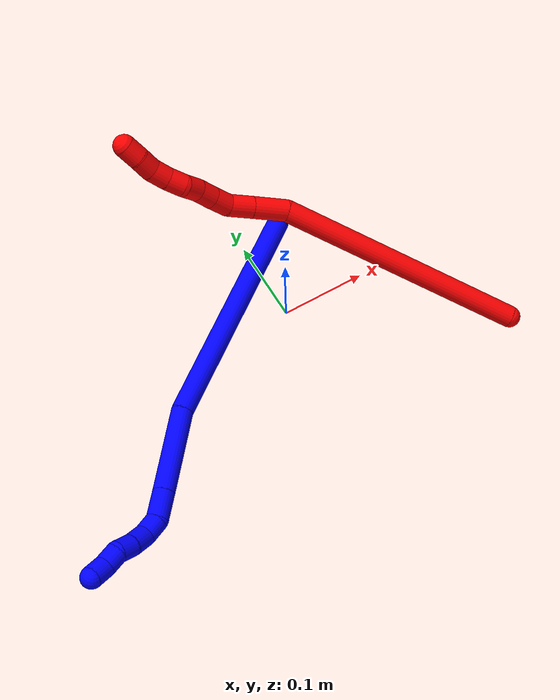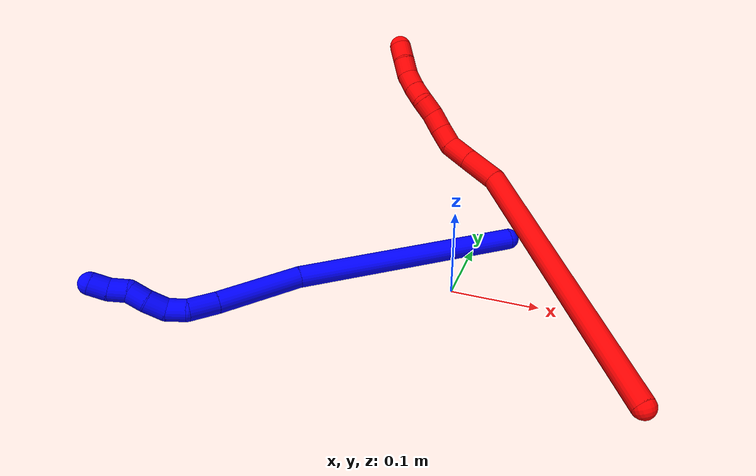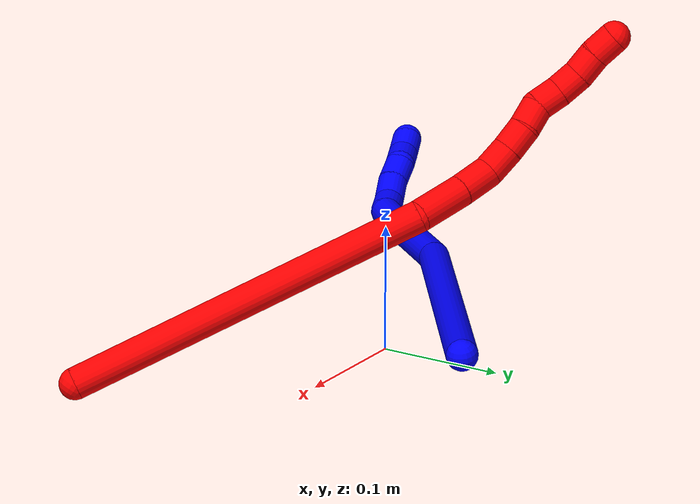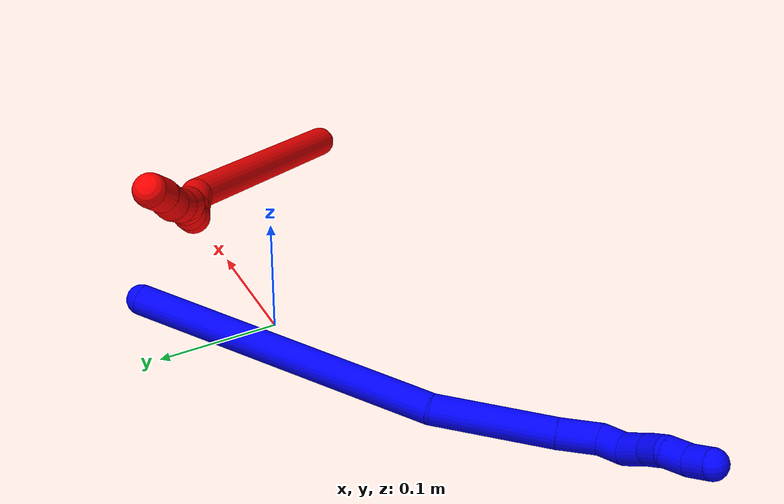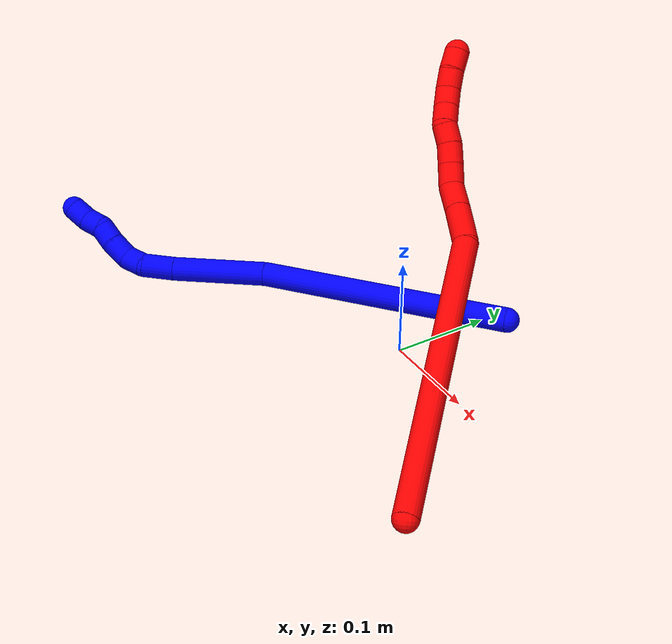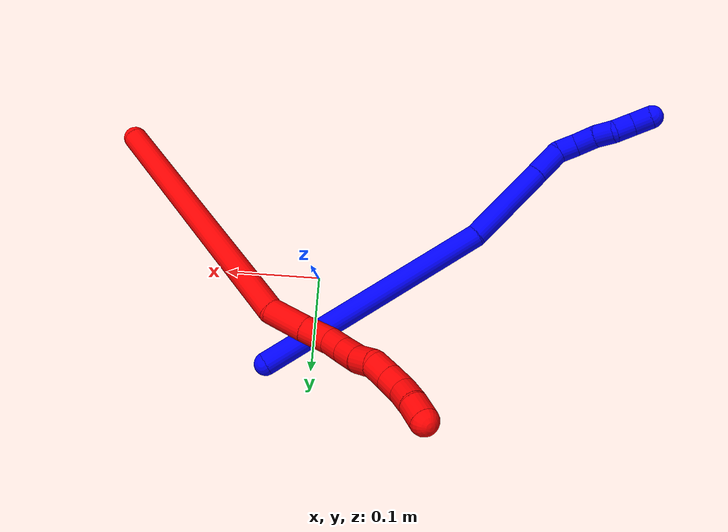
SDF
<sdf version="1.7">
 <world name="default">
  <plugin name="TubeGeneratorPlugin" filename="libtube_generator_plugin.so"/>
  <model name="photoneo_s_sensor">
   <static>1</static>
   <pose>0 0 2 1.57079 1.57079 3.14159</pose>
   <link name="link">
    <inertial><mass>0.1</mass></inertial>
    <sensor name="sensor" type="depth">
     <update_rate>30</update_rate>
     <camera>
      <horizontal_fov>1.22</horizontal_fov>
      <image><width>1920</width><height>1200</height><format>B8G8R8</format></image>
      <clip><near>0.1</near><far>4</far></clip>
      <depth_camera><output>points</output></depth_camera>
     </camera>
     <plugin name="camera_plugin" filename="libgazebo_ros_depth_camera.so">
      <baseline>0.2</baseline>
      <alwaysOn>1</alwaysOn>
      <updateRate>0.0</updateRate>
      <cameraName>camera_ir</cameraName>
      <imageTopicName>/camera/color/image_raw</imageTopicName>
      <cameraInfoTopicName>/camera/color/camera_info</cameraInfoTopicName>
      <depthImageTopicName>/camera/depth/image_raw</depthImageTopicName>
      <depthImageCameraInfoTopicName>/camera/depth/camera_info</depthImageCameraInfoTopicName>
      <pointCloudTopicName>/camera/depth/points</pointCloudTopicName>
      <frameName>fr_optical</frameName>
      <pointCloudCutoff>0.1</pointCloudCutoff>
      <pointCloudCutoffMax>2.0</pointCloudCutoffMax>
      <distortionK1>0</distortionK1>
      <distortionK2>0</distortionK2>
      <distortionK3>0</distortionK3>
      <distortionT1>0</distortionT1>
      <distortionT2>0</distortionT2>
      <CxPrime>0</CxPrime>
      <Cx>0</Cx>
      <Cy>0</Cy>
      <focalLength>0</focalLength>
      <hackBaseline>0</hackBaseline>
     </plugin>
    </sensor>
   </link>
  </model>
  <gravity>0 0 -9.8</gravity>
  <magnetic_field>6e-06 2.3e-05 -4.2e-05</magnetic_field>
  <atmosphere type="adiabatic"/>
  <physics name="default_physics" default="0" type="ode">
   <max_step_size>0.003</max_step_size>
   <real_time_factor>1</real_time_factor>
   <real_time_update_rate>1000</real_time_update_rate>
   <max_contacts>10000</max_contacts>
   <ode>
    <solver>
     <type>quick</type>
     <iters>100</iters>
     <sor>1.3</sor>
     <use_dynamic_moi_rescaling>0</use_dynamic_moi_rescaling>
    </solver>
    <constraints>
     <contact_max_correcting_vel>0</contact_max_correcting_vel>
     <contact_surface_layer>0.001</contact_surface_layer>
     <cfm>0</cfm>
     <erp>0.2</erp>
    </constraints>
   </ode>
  </physics>
  <scene><ambient>0.4 0.4 0.4 1</ambient><background>0.7 0.7 0.7 1</background><shadows>0</shadows></scene>
  <audio><device>default</device></audio>
  <spherical_coordinates>
   <surface_model>EARTH_WGS84</surface_model>
   <latitude_deg>0</latitude_deg>
   <longitude_deg>0</longitude_deg>
   <elevation>0</elevation>
   <heading_deg>0</heading_deg>
  </spherical_coordinates>
  <model name="bin">
   <static>1</static>
   <link name="bottom">
    <collision name="collision-bottom">
     <pose>0 0 -0.01 0 -0 0</pose>
     <geometry><box><size>0.8 0.6 0.02</size></box></geometry>
     <surface>
      <friction><ode><mu>100</mu><mu2>100</mu2></ode></friction>
      <contact><collide_bitmask>65535</collide_bitmask></contact>
     </surface>
    </collision>
   </link>
   <link name="west_wall">
    <collision name="collision-west_wall">
     <pose>-0.41 0 0.1 0 -0 0</pose>
     <geometry><box><size>0.02 0.6 0.2</size></box></geometry>
     <surface>
      <friction><ode><mu>100</mu><mu2>100</mu2></ode></friction>
      <contact><collide_bitmask>65535</collide_bitmask></contact>
     </surface>
    </collision>
   </link>
   <link name="east_wall">
    <collision name="collision-east_wall">
     <pose>0.41 0 0.1 0 -0 0</pose>
     <geometry><box><size>0.02 0.6 0.2</size></box></geometry>
     <surface>
      <friction><ode><mu>100</mu><mu2>100</mu2></ode></friction>
      <contact><collide_bitmask>65535</collide_bitmask></contact>
     </surface>
    </collision>
   </link>
   <link name="south_wall">
    <collision name="collision-south_wall">
     <pose>0 -0.31 0.1 0 -0 0</pose>
     <geometry><box><size>0.8 0.02 0.2</size></box></geometry>
     <surface>
      <friction><ode><mu>100</mu><mu2>100</mu2></ode></friction>
      <contact><collide_bitmask>65535</collide_bitmask></contact>
     </surface>
    </collision>
   </link>
   <link name="north_wall">
    <collision name="collision-north_wall">
     <pose>0 0.31 0.1 0 -0 0</pose>
     <geometry><box><size>0.8 0.02 0.2</size></box></geometry>
     <surface>
      <friction><ode><mu>100</mu><mu2>100</mu2></ode></friction>
      <contact><collide_bitmask>65535</collide_bitmask></contact>
     </surface>
    </collision>
   </link>
  </model>
  <model name="1">
   <static>0</static>
   <link name="1">
    <collision name="collision-cylinder-e_1_1_4">
     <pose>-0.097553 -0.079402 -0.036047 1.99695 -0.84137 -1.21398</pose>
     <geometry><cylinder><radius>0.0125</radius><length>0.261692</length></cylinder></geometry>
     <surface>
      <friction><ode><mu>1.16</mu><mu2>1.16</mu2><slip1>0</slip1><slip2>0</slip2></ode></friction>
      <contact><ode><kp>1e+06</kp><kd>1</kd><max_vel>0</max_vel><min_depth>0.001</min_depth></ode></contact>
     </surface>
    </collision>
    <visual name="visual-cylinder-e_1_1_4">
     <pose>-0.097553 -0.079402 -0.036047 1.99695 -0.84137 -1.21398</pose>
     <geometry><cylinder><radius>0.0125</radius><length>0.261692</length></cylinder></geometry>
     <material><ambient>0 0 1 1</ambient></material>
    </visual>
    <collision name="collision-cylinder-e_2_4_5">
     <pose>-0.22378 -0.196857 -0.083614 1.86477 -0.624822 -0.82104</pose>
     <geometry><cylinder><radius>0.0125</radius><length>0.098039</length></cylinder></geometry>
     <surface>
      <friction><ode><mu>1.16</mu><mu2>1.16</mu2><slip1>0</slip1><slip2>0</slip2></ode></friction>
      <contact><ode><kp>1e+06</kp><kd>1</kd><max_vel>0</max_vel><min_depth>0.001</min_depth></ode></contact>
     </surface>
    </collision>
    <visual name="visual-cylinder-e_2_4_5">
     <pose>-0.22378 -0.196857 -0.083614 1.86477 -0.624822 -0.82104</pose>
     <geometry><cylinder><radius>0.0125</radius><length>0.098039</length></cylinder></geometry>
     <material><ambient>0 0 1 1</ambient></material>
    </visual>
    <collision name="collision-cylinder-e_3_5_6">
     <pose>-0.262452 -0.247988 -0.097878 1.77759 -0.64226 -0.77763</pose>
     <geometry><cylinder><radius>0.0125</radius><length>0.03338</length></cylinder></geometry>
     <surface>
      <friction><ode><mu>1.16</mu><mu2>1.16</mu2><slip1>0</slip1><slip2>0</slip2></ode></friction>
      <contact><ode><kp>1e+06</kp><kd>1</kd><max_vel>0</max_vel><min_depth>0.001</min_depth></ode></contact>
     </surface>
    </collision>
    <visual name="visual-cylinder-e_3_5_6">
     <pose>-0.262452 -0.247988 -0.097878 1.77759 -0.64226 -0.77763</pose>
     <geometry><cylinder><radius>0.0125</radius><length>0.03338</length></cylinder></geometry>
     <material><ambient>0 0 1 1</ambient></material>
    </visual>
    <collision name="collision-cylinder-e_4_6_7">
     <pose>-0.28195 -0.26598 -0.102349 1.90897 -1.06949 -1.39282</pose>
     <geometry><cylinder><radius>0.0125</radius><length>0.021669</length></cylinder></geometry>
     <surface>
      <friction><ode><mu>1.16</mu><mu2>1.16</mu2><slip1>0</slip1><slip2>0</slip2></ode></friction>
      <contact><ode><kp>1e+06</kp><kd>1</kd><max_vel>0</max_vel><min_depth>0.001</min_depth></ode></contact>
     </surface>
    </collision>
    <visual name="visual-cylinder-e_4_6_7">
     <pose>-0.28195 -0.26598 -0.102349 1.90897 -1.06949 -1.39282</pose>
     <geometry><cylinder><radius>0.0125</radius><length>0.021669</length></cylinder></geometry>
     <material><ambient>0 0 1 1</ambient></material>
    </visual>
    <collision name="collision-cylinder-e_5_7_8">
     <pose>-0.301836 -0.275334 -0.100977 0.961561 -1.08998 -0.612529</pose>
     <geometry><cylinder><radius>0.0125</radius><length>0.023426</length></cylinder></geometry>
     <surface>
      <friction><ode><mu>1.16</mu><mu2>1.16</mu2><slip1>0</slip1><slip2>0</slip2></ode></friction>
      <contact><ode><kp>1e+06</kp><kd>1</kd><max_vel>0</max_vel><min_depth>0.001</min_depth></ode></contact>
     </surface>
    </collision>
    <visual name="visual-cylinder-e_5_7_8">
     <pose>-0.301836 -0.275334 -0.100977 0.961561 -1.08998 -0.612529</pose>
     <geometry><cylinder><radius>0.0125</radius><length>0.023426</length></cylinder></geometry>
     <material><ambient>0 0 1 1</ambient></material>
    </visual>
    <collision name="collision-cylinder-e_6_8_9">
     <pose>-0.321842 -0.282075 -0.095042 0.68119 -1.20824 -0.479802</pose>
     <geometry><cylinder><radius>0.0125</radius><length>0.02058</length></cylinder></geometry>
     <surface>
      <friction><ode><mu>1.16</mu><mu2>1.16</mu2><slip1>0</slip1><slip2>0</slip2></ode></friction>
      <contact><ode><kp>1e+06</kp><kd>1</kd><max_vel>0</max_vel><min_depth>0.001</min_depth></ode></contact>
     </surface>
    </collision>
    <visual name="visual-cylinder-e_6_8_9">
     <pose>-0.321842 -0.282075 -0.095042 0.68119 -1.20824 -0.479802</pose>
     <geometry><cylinder><radius>0.0125</radius><length>0.02058</length></cylinder></geometry>
     <material><ambient>0 0 1 1</ambient></material>
    </visual>
    <collision name="collision-cylinder-e_7_9_10">
     <pose>-0.340554 -0.288907 -0.093391 1.82633 -1.09479 -1.33626</pose>
     <geometry><cylinder><radius>0.0125</radius><length>0.020454</length></cylinder></geometry>
     <surface>
      <friction><ode><mu>1.16</mu><mu2>1.16</mu2><slip1>0</slip1><slip2>0</slip2></ode></friction>
      <contact><ode><kp>1e+06</kp><kd>1</kd><max_vel>0</max_vel><min_depth>0.001</min_depth></ode></contact>
     </surface>
    </collision>
    <visual name="visual-cylinder-e_7_9_10">
     <pose>-0.340554 -0.288907 -0.093391 1.82633 -1.09479 -1.33626</pose>
     <geometry><cylinder><radius>0.0125</radius><length>0.020454</length></cylinder></geometry>
     <material><ambient>0 0 1 1</ambient></material>
    </visual>
    <collision name="collision-cylinder-e_8_10_2">
     <pose>-0.359127 -0.297442 -0.093229 1.24601 -1.15197 -0.873145</pose>
     <geometry><cylinder><radius>0.0125</radius><length>0.020761</length></cylinder></geometry>
     <surface>
      <friction><ode><mu>1.16</mu><mu2>1.16</mu2><slip1>0</slip1><slip2>0</slip2></ode></friction>
      <contact><ode><kp>1e+06</kp><kd>1</kd><max_vel>0</max_vel><min_depth>0.001</min_depth></ode></contact>
     </surface>
    </collision>
    <visual name="visual-cylinder-e_8_10_2">
     <pose>-0.359127 -0.297442 -0.093229 1.24601 -1.15197 -0.873145</pose>
     <geometry><cylinder><radius>0.0125</radius><length>0.020761</length></cylinder></geometry>
     <material><ambient>0 0 1 1</ambient></material>
    </visual>
    <collision name="collision-sphere-2">
     <pose>-0.36861 -0.301443 -0.091881 0 -0 0</pose>
     <geometry><sphere><radius>0.0125</radius></sphere></geometry>
     <surface>
      <friction><ode><mu>1.16</mu><mu2>1.16</mu2><slip1>0</slip1><slip2>0</slip2></ode></friction>
      <contact><ode><kp>1e+06</kp><kd>1</kd><max_vel>0</max_vel><min_depth>0.001</min_depth></ode></contact>
     </surface>
    </collision>
    <visual name="visual-sphere-2">
     <pose>-0.36861 -0.301443 -0.091881 0 -0 0</pose>
     <geometry><sphere><radius>0.0125</radius></sphere></geometry>
     <material><ambient>0 0 1 1</ambient></material>
    </visual>
    <collision name="collision-sphere-10">
     <pose>-0.349644 -0.293442 -0.094576 0 -0 0</pose>
     <geometry><sphere><radius>0.0125</radius></sphere></geometry>
     <surface>
      <friction><ode><mu>1.16</mu><mu2>1.16</mu2><slip1>0</slip1><slip2>0</slip2></ode></friction>
      <contact><ode><kp>1e+06</kp><kd>1</kd><max_vel>0</max_vel><min_depth>0.001</min_depth></ode></contact>
     </surface>
    </collision>
    <visual name="visual-sphere-10">
     <pose>-0.349644 -0.293442 -0.094576 0 -0 0</pose>
     <geometry><sphere><radius>0.0125</radius></sphere></geometry>
     <material><ambient>0 0 1 1</ambient></material>
    </visual>
    <collision name="collision-sphere-9">
     <pose>-0.331464 -0.284373 -0.092207 0 -0 0</pose>
     <geometry><sphere><radius>0.0125</radius></sphere></geometry>
     <surface>
      <friction><ode><mu>1.16</mu><mu2>1.16</mu2><slip1>0</slip1><slip2>0</slip2></ode></friction>
      <contact><ode><kp>1e+06</kp><kd>1</kd><max_vel>0</max_vel><min_depth>0.001</min_depth></ode></contact>
     </surface>
    </collision>
    <visual name="visual-sphere-9">
     <pose>-0.331464 -0.284373 -0.092207 0 -0 0</pose>
     <geometry><sphere><radius>0.0125</radius></sphere></geometry>
     <material><ambient>0 0 1 1</ambient></material>
    </visual>
    <collision name="collision-sphere-4">
     <pose>-0.195106 -0.158804 -0.072094 0 -0 0</pose>
     <geometry><sphere><radius>0.0125</radius></sphere></geometry>
     <surface>
      <friction><ode><mu>1.16</mu><mu2>1.16</mu2><slip1>0</slip1><slip2>0</slip2></ode></friction>
      <contact><ode><kp>1e+06</kp><kd>1</kd><max_vel>0</max_vel><min_depth>0.001</min_depth></ode></contact>
     </surface>
    </collision>
    <visual name="visual-sphere-4">
     <pose>-0.195106 -0.158804 -0.072094 0 -0 0</pose>
     <geometry><sphere><radius>0.0125</radius></sphere></geometry>
     <material><ambient>0 0 1 1</ambient></material>
    </visual>
    <collision name="collision-sphere-1">
     <geometry><sphere><radius>0.0125</radius></sphere></geometry>
     <surface>
      <friction><ode><mu>1.16</mu><mu2>1.16</mu2><slip1>0</slip1><slip2>0</slip2></ode></friction>
      <contact><ode><kp>1e+06</kp><kd>1</kd><max_vel>0</max_vel><min_depth>0.001</min_depth></ode></contact>
     </surface>
    </collision>
    <visual name="visual-sphere-1">
     <geometry><sphere><radius>0.0125</radius></sphere></geometry>
     <material><ambient>0 0 1 1</ambient></material>
    </visual>
    <collision name="collision-sphere-8">
     <pose>-0.312221 -0.279777 -0.097877 0 -0 0</pose>
     <geometry><sphere><radius>0.0125</radius></sphere></geometry>
     <surface>
      <friction><ode><mu>1.16</mu><mu2>1.16</mu2><slip1>0</slip1><slip2>0</slip2></ode></friction>
      <contact><ode><kp>1e+06</kp><kd>1</kd><max_vel>0</max_vel><min_depth>0.001</min_depth></ode></contact>
     </surface>
    </collision>
    <visual name="visual-sphere-8">
     <pose>-0.312221 -0.279777 -0.097877 0 -0 0</pose>
     <geometry><sphere><radius>0.0125</radius></sphere></geometry>
     <material><ambient>0 0 1 1</ambient></material>
    </visual>
    <collision name="collision-sphere-5">
     <pose>-0.252454 -0.234909 -0.095134 0 -0 0</pose>
     <geometry><sphere><radius>0.0125</radius></sphere></geometry>
     <surface>
      <friction><ode><mu>1.16</mu><mu2>1.16</mu2><slip1>0</slip1><slip2>0</slip2></ode></friction>
      <contact><ode><kp>1e+06</kp><kd>1</kd><max_vel>0</max_vel><min_depth>0.001</min_depth></ode></contact>
     </surface>
    </collision>
    <visual name="visual-sphere-5">
     <pose>-0.252454 -0.234909 -0.095134 0 -0 0</pose>
     <geometry><sphere><radius>0.0125</radius></sphere></geometry>
     <material><ambient>0 0 1 1</ambient></material>
    </visual>
    <collision name="collision-sphere-6">
     <pose>-0.272449 -0.261068 -0.100622 0 -0 0</pose>
     <geometry><sphere><radius>0.0125</radius></sphere></geometry>
     <surface>
      <friction><ode><mu>1.16</mu><mu2>1.16</mu2><slip1>0</slip1><slip2>0</slip2></ode></friction>
      <contact><ode><kp>1e+06</kp><kd>1</kd><max_vel>0</max_vel><min_depth>0.001</min_depth></ode></contact>
     </surface>
    </collision>
    <visual name="visual-sphere-6">
     <pose>-0.272449 -0.261068 -0.100622 0 -0 0</pose>
     <geometry><sphere><radius>0.0125</radius></sphere></geometry>
     <material><ambient>0 0 1 1</ambient></material>
    </visual>
    <collision name="collision-sphere-7">
     <pose>-0.291451 -0.270892 -0.104077 0 -0 0</pose>
     <geometry><sphere><radius>0.0125</radius></sphere></geometry>
     <surface>
      <friction><ode><mu>1.16</mu><mu2>1.16</mu2><slip1>0</slip1><slip2>0</slip2></ode></friction>
      <contact><ode><kp>1e+06</kp><kd>1</kd><max_vel>0</max_vel><min_depth>0.001</min_depth></ode></contact>
     </surface>
    </collision>
    <visual name="visual-sphere-7">
     <pose>-0.291451 -0.270892 -0.104077 0 -0 0</pose>
     <geometry><sphere><radius>0.0125</radius></sphere></geometry>
     <material><ambient>0 0 1 1</ambient></material>
    </visual>
    <inertial>
     <pose>-0.180908 -0.156918 -0.062565 0 -0 0</pose>
     <mass>0.5</mass>
     <inertia>
      <ixx>-0.000622</ixx>
      <ixy>0</ixy>
      <ixz>0</ixz>
      <iyy>-0.000252</iyy>
      <iyz>0</iyz>
      <izz>0.002155</izz>
     </inertia>
    </inertial>
   </link>
   <pose>0.044792 0.096337 0.028538 -0.056443 0.252109 -0.042448</pose>
  </model>
  <model name="2">
   <static>0</static>
   <link name="2">
    <collision name="collision-cylinder-e_1_1_4">
     <pose>-0.047911 0.0617 0.120817 -0.472161 -0.339493 0.082417</pose>
     <geometry><cylinder><radius>0.0125</radius><length>0.287743</length></cylinder></geometry>
     <surface>
      <friction><ode><mu>1.16</mu><mu2>1.16</mu2><slip1>0</slip1><slip2>0</slip2></ode></friction>
      <contact><ode><kp>1e+06</kp><kd>1</kd><max_vel>0</max_vel><min_depth>0.001</min_depth></ode></contact>
     </surface>
    </collision>
    <visual name="visual-cylinder-e_1_1_4">
     <pose>-0.047911 0.0617 0.120817 -0.472161 -0.339493 0.082417</pose>
     <geometry><cylinder><radius>0.0125</radius><length>0.287743</length></cylinder></geometry>
     <material><ambient>1 0 0 1</ambient></material>
    </visual>
    <collision name="collision-cylinder-e_2_4_5">
     <pose>-0.107883 0.127294 0.257265 -0.24418 -0.642725 0.081649</pose>
     <geometry><cylinder><radius>0.0125</radius><length>0.040249</length></cylinder></geometry>
     <surface>
      <friction><ode><mu>1.16</mu><mu2>1.16</mu2><slip1>0</slip1><slip2>0</slip2></ode></friction>
      <contact><ode><kp>1e+06</kp><kd>1</kd><max_vel>0</max_vel><min_depth>0.001</min_depth></ode></contact>
     </surface>
    </collision>
    <visual name="visual-cylinder-e_2_4_5">
     <pose>-0.107883 0.127294 0.257265 -0.24418 -0.642725 0.081649</pose>
     <geometry><cylinder><radius>0.0125</radius><length>0.040249</length></cylinder></geometry>
     <material><ambient>1 0 0 1</ambient></material>
    </visual>
    <collision name="collision-cylinder-e_3_5_6">
     <pose>-0.128309 0.133115 0.284127 -0.169911 -0.633188 0.055785</pose>
     <geometry><cylinder><radius>0.0125</radius><length>0.02827</length></cylinder></geometry>
     <surface>
      <friction><ode><mu>1.16</mu><mu2>1.16</mu2><slip1>0</slip1><slip2>0</slip2></ode></friction>
      <contact><ode><kp>1e+06</kp><kd>1</kd><max_vel>0</max_vel><min_depth>0.001</min_depth></ode></contact>
     </surface>
    </collision>
    <visual name="visual-cylinder-e_3_5_6">
     <pose>-0.128309 0.133115 0.284127 -0.169911 -0.633188 0.055785</pose>
     <geometry><cylinder><radius>0.0125</radius><length>0.02827</length></cylinder></geometry>
     <material><ambient>1 0 0 1</ambient></material>
    </visual>
    <collision name="collision-cylinder-e_4_6_7">
     <pose>-0.139668 0.135768 0.306198 -0.06685 -0.268927 0.009047</pose>
     <geometry><cylinder><radius>0.0125</radius><length>0.022539</length></cylinder></geometry>
     <surface>
      <friction><ode><mu>1.16</mu><mu2>1.16</mu2><slip1>0</slip1><slip2>0</slip2></ode></friction>
      <contact><ode><kp>1e+06</kp><kd>1</kd><max_vel>0</max_vel><min_depth>0.001</min_depth></ode></contact>
     </surface>
    </collision>
    <visual name="visual-cylinder-e_4_6_7">
     <pose>-0.139668 0.135768 0.306198 -0.06685 -0.268927 0.009047</pose>
     <geometry><cylinder><radius>0.0125</radius><length>0.022539</length></cylinder></geometry>
     <material><ambient>1 0 0 1</ambient></material>
    </visual>
    <collision name="collision-cylinder-e_5_7_8">
     <pose>-0.145003 0.136583 0.327347 -0.008627 -0.22331 0.000967</pose>
     <geometry><cylinder><radius>0.0125</radius><length>0.021143</length></cylinder></geometry>
     <surface>
      <friction><ode><mu>1.16</mu><mu2>1.16</mu2><slip1>0</slip1><slip2>0</slip2></ode></friction>
      <contact><ode><kp>1e+06</kp><kd>1</kd><max_vel>0</max_vel><min_depth>0.001</min_depth></ode></contact>
     </surface>
    </collision>
    <visual name="visual-cylinder-e_5_7_8">
     <pose>-0.145003 0.136583 0.327347 -0.008627 -0.22331 0.000967</pose>
     <geometry><cylinder><radius>0.0125</radius><length>0.021143</length></cylinder></geometry>
     <material><ambient>1 0 0 1</ambient></material>
    </visual>
    <collision name="collision-cylinder-e_6_8_9">
     <pose>-0.150439 0.135066 0.347053 0.169219 -0.313885 -0.02684</pose>
     <geometry><cylinder><radius>0.0125</radius><length>0.020045</length></cylinder></geometry>
     <surface>
      <friction><ode><mu>1.16</mu><mu2>1.16</mu2><slip1>0</slip1><slip2>0</slip2></ode></friction>
      <contact><ode><kp>1e+06</kp><kd>1</kd><max_vel>0</max_vel><min_depth>0.001</min_depth></ode></contact>
     </surface>
    </collision>
    <visual name="visual-cylinder-e_6_8_9">
     <pose>-0.150439 0.135066 0.347053 0.169219 -0.313885 -0.02684</pose>
     <geometry><cylinder><radius>0.0125</radius><length>0.020045</length></cylinder></geometry>
     <material><ambient>1 0 0 1</ambient></material>
    </visual>
    <collision name="collision-cylinder-e_7_9_10">
     <pose>-0.156961 0.13627 0.365418 -0.303583 -0.349771 0.054043</pose>
     <geometry><cylinder><radius>0.0125</radius><length>0.020008</length></cylinder></geometry>
     <surface>
      <friction><ode><mu>1.16</mu><mu2>1.16</mu2><slip1>0</slip1><slip2>0</slip2></ode></friction>
      <contact><ode><kp>1e+06</kp><kd>1</kd><max_vel>0</max_vel><min_depth>0.001</min_depth></ode></contact>
     </surface>
    </collision>
    <visual name="visual-cylinder-e_7_9_10">
     <pose>-0.156961 0.13627 0.365418 -0.303583 -0.349771 0.054043</pose>
     <geometry><cylinder><radius>0.0125</radius><length>0.020008</length></cylinder></geometry>
     <material><ambient>1 0 0 1</ambient></material>
    </visual>
    <collision name="collision-cylinder-e_8_10_11">
     <pose>-0.162761 0.141303 0.383844 -0.230859 -0.239388 0.027887</pose>
     <geometry><cylinder><radius>0.0125</radius><length>0.020001</length></cylinder></geometry>
     <surface>
      <friction><ode><mu>1.16</mu><mu2>1.16</mu2><slip1>0</slip1><slip2>0</slip2></ode></friction>
      <contact><ode><kp>1e+06</kp><kd>1</kd><max_vel>0</max_vel><min_depth>0.001</min_depth></ode></contact>
     </surface>
    </collision>
    <visual name="visual-cylinder-e_8_10_11">
     <pose>-0.162761 0.141303 0.383844 -0.230859 -0.239388 0.027887</pose>
     <geometry><cylinder><radius>0.0125</radius><length>0.020001</length></cylinder></geometry>
     <material><ambient>1 0 0 1</ambient></material>
    </visual>
    <collision name="collision-cylinder-e_9_11_12">
     <pose>-0.165211 0.144721 0.40323 -0.119784 -0.007902 0.000474</pose>
     <geometry><cylinder><radius>0.0125</radius><length>0.020001</length></cylinder></geometry>
     <surface>
      <friction><ode><mu>1.16</mu><mu2>1.16</mu2><slip1>0</slip1><slip2>0</slip2></ode></friction>
      <contact><ode><kp>1e+06</kp><kd>1</kd><max_vel>0</max_vel><min_depth>0.001</min_depth></ode></contact>
     </surface>
    </collision>
    <visual name="visual-cylinder-e_9_11_12">
     <pose>-0.165211 0.144721 0.40323 -0.119784 -0.007902 0.000474</pose>
     <geometry><cylinder><radius>0.0125</radius><length>0.020001</length></cylinder></geometry>
     <material><ambient>1 0 0 1</ambient></material>
    </visual>
    <collision name="collision-cylinder-e_10_12_2">
     <pose>-0.165763 0.148662 0.422763 -0.278496 -0.0473 0.006631</pose>
     <geometry><cylinder><radius>0.0125</radius><length>0.02</length></cylinder></geometry>
     <surface>
      <friction><ode><mu>1.16</mu><mu2>1.16</mu2><slip1>0</slip1><slip2>0</slip2></ode></friction>
      <contact><ode><kp>1e+06</kp><kd>1</kd><max_vel>0</max_vel><min_depth>0.001</min_depth></ode></contact>
     </surface>
    </collision>
    <visual name="visual-cylinder-e_10_12_2">
     <pose>-0.165763 0.148662 0.422763 -0.278496 -0.0473 0.006631</pose>
     <geometry><cylinder><radius>0.0125</radius><length>0.02</length></cylinder></geometry>
     <material><ambient>1 0 0 1</ambient></material>
    </visual>
    <collision name="collision-sphere-2">
     <pose>-0.166236 0.151408 0.432367 0 -0 0</pose>
     <geometry><sphere><radius>0.0125</radius></sphere></geometry>
     <surface>
      <friction><ode><mu>1.16</mu><mu2>1.16</mu2><slip1>0</slip1><slip2>0</slip2></ode></friction>
      <contact><ode><kp>1e+06</kp><kd>1</kd><max_vel>0</max_vel><min_depth>0.001</min_depth></ode></contact>
     </surface>
    </collision>
    <visual name="visual-sphere-2">
     <pose>-0.166236 0.151408 0.432367 0 -0 0</pose>
     <geometry><sphere><radius>0.0125</radius></sphere></geometry>
     <material><ambient>1 0 0 1</ambient></material>
    </visual>
    <collision name="collision-sphere-12">
     <pose>-0.16529 0.145916 0.413159 0 -0 0</pose>
     <geometry><sphere><radius>0.0125</radius></sphere></geometry>
     <surface>
      <friction><ode><mu>1.16</mu><mu2>1.16</mu2><slip1>0</slip1><slip2>0</slip2></ode></friction>
      <contact><ode><kp>1e+06</kp><kd>1</kd><max_vel>0</max_vel><min_depth>0.001</min_depth></ode></contact>
     </surface>
    </collision>
    <visual name="visual-sphere-12">
     <pose>-0.16529 0.145916 0.413159 0 -0 0</pose>
     <geometry><sphere><radius>0.0125</radius></sphere></geometry>
     <material><ambient>1 0 0 1</ambient></material>
    </visual>
    <collision name="collision-sphere-11">
     <pose>-0.165132 0.143526 0.393302 0 -0 0</pose>
     <geometry><sphere><radius>0.0125</radius></sphere></geometry>
     <surface>
      <friction><ode><mu>1.16</mu><mu2>1.16</mu2><slip1>0</slip1><slip2>0</slip2></ode></friction>
      <contact><ode><kp>1e+06</kp><kd>1</kd><max_vel>0</max_vel><min_depth>0.001</min_depth></ode></contact>
     </surface>
    </collision>
    <visual name="visual-sphere-11">
     <pose>-0.165132 0.143526 0.393302 0 -0 0</pose>
     <geometry><sphere><radius>0.0125</radius></sphere></geometry>
     <material><ambient>1 0 0 1</ambient></material>
    </visual>
    <collision name="collision-sphere-10">
     <pose>-0.16039 0.13908 0.374386 0 -0 0</pose>
     <geometry><sphere><radius>0.0125</radius></sphere></geometry>
     <surface>
      <friction><ode><mu>1.16</mu><mu2>1.16</mu2><slip1>0</slip1><slip2>0</slip2></ode></friction>
      <contact><ode><kp>1e+06</kp><kd>1</kd><max_vel>0</max_vel><min_depth>0.001</min_depth></ode></contact>
     </surface>
    </collision>
    <visual name="visual-sphere-10">
     <pose>-0.16039 0.13908 0.374386 0 -0 0</pose>
     <geometry><sphere><radius>0.0125</radius></sphere></geometry>
     <material><ambient>1 0 0 1</ambient></material>
    </visual>
    <collision name="collision-sphere-9">
     <pose>-0.153533 0.133461 0.356449 0 -0 0</pose>
     <geometry><sphere><radius>0.0125</radius></sphere></geometry>
     <surface>
      <friction><ode><mu>1.16</mu><mu2>1.16</mu2><slip1>0</slip1><slip2>0</slip2></ode></friction>
      <contact><ode><kp>1e+06</kp><kd>1</kd><max_vel>0</max_vel><min_depth>0.001</min_depth></ode></contact>
     </surface>
    </collision>
    <visual name="visual-sphere-9">
     <pose>-0.153533 0.133461 0.356449 0 -0 0</pose>
     <geometry><sphere><radius>0.0125</radius></sphere></geometry>
     <material><ambient>1 0 0 1</ambient></material>
    </visual>
    <collision name="collision-sphere-4">
     <pose>-0.095821 0.1234 0.241634 0 -0 0</pose>
     <geometry><sphere><radius>0.0125</radius></sphere></geometry>
     <surface>
      <friction><ode><mu>1.16</mu><mu2>1.16</mu2><slip1>0</slip1><slip2>0</slip2></ode></friction>
      <contact><ode><kp>1e+06</kp><kd>1</kd><max_vel>0</max_vel><min_depth>0.001</min_depth></ode></contact>
     </surface>
    </collision>
    <visual name="visual-sphere-4">
     <pose>-0.095821 0.1234 0.241634 0 -0 0</pose>
     <geometry><sphere><radius>0.0125</radius></sphere></geometry>
     <material><ambient>1 0 0 1</ambient></material>
    </visual>
    <collision name="collision-sphere-1">
     <geometry><sphere><radius>0.0125</radius></sphere></geometry>
     <surface>
      <friction><ode><mu>1.16</mu><mu2>1.16</mu2><slip1>0</slip1><slip2>0</slip2></ode></friction>
      <contact><ode><kp>1e+06</kp><kd>1</kd><max_vel>0</max_vel><min_depth>0.001</min_depth></ode></contact>
     </surface>
    </collision>
    <visual name="visual-sphere-1">
     <geometry><sphere><radius>0.0125</radius></sphere></geometry>
     <material><ambient>1 0 0 1</ambient></material>
    </visual>
    <collision name="collision-sphere-8">
     <pose>-0.147344 0.136672 0.337656 0 -0 0</pose>
     <geometry><sphere><radius>0.0125</radius></sphere></geometry>
     <surface>
      <friction><ode><mu>1.16</mu><mu2>1.16</mu2><slip1>0</slip1><slip2>0</slip2></ode></friction>
      <contact><ode><kp>1e+06</kp><kd>1</kd><max_vel>0</max_vel><min_depth>0.001</min_depth></ode></contact>
     </surface>
    </collision>
    <visual name="visual-sphere-8">
     <pose>-0.147344 0.136672 0.337656 0 -0 0</pose>
     <geometry><sphere><radius>0.0125</radius></sphere></geometry>
     <material><ambient>1 0 0 1</ambient></material>
    </visual>
    <collision name="collision-sphere-5">
     <pose>-0.119945 0.131189 0.272896 0 -0 0</pose>
     <geometry><sphere><radius>0.0125</radius></sphere></geometry>
     <surface>
      <friction><ode><mu>1.16</mu><mu2>1.16</mu2><slip1>0</slip1><slip2>0</slip2></ode></friction>
      <contact><ode><kp>1e+06</kp><kd>1</kd><max_vel>0</max_vel><min_depth>0.001</min_depth></ode></contact>
     </surface>
    </collision>
    <visual name="visual-sphere-5">
     <pose>-0.119945 0.131189 0.272896 0 -0 0</pose>
     <geometry><sphere><radius>0.0125</radius></sphere></geometry>
     <material><ambient>1 0 0 1</ambient></material>
    </visual>
    <collision name="collision-sphere-6">
     <pose>-0.136673 0.135042 0.295358 0 -0 0</pose>
     <geometry><sphere><radius>0.0125</radius></sphere></geometry>
     <surface>
      <friction><ode><mu>1.16</mu><mu2>1.16</mu2><slip1>0</slip1><slip2>0</slip2></ode></friction>
      <contact><ode><kp>1e+06</kp><kd>1</kd><max_vel>0</max_vel><min_depth>0.001</min_depth></ode></contact>
     </surface>
    </collision>
    <visual name="visual-sphere-6">
     <pose>-0.136673 0.135042 0.295358 0 -0 0</pose>
     <geometry><sphere><radius>0.0125</radius></sphere></geometry>
     <material><ambient>1 0 0 1</ambient></material>
    </visual>
    <collision name="collision-sphere-7">
     <pose>-0.142662 0.136494 0.317038 0 -0 0</pose>
     <geometry><sphere><radius>0.0125</radius></sphere></geometry>
     <surface>
      <friction><ode><mu>1.16</mu><mu2>1.16</mu2><slip1>0</slip1><slip2>0</slip2></ode></friction>
      <contact><ode><kp>1e+06</kp><kd>1</kd><max_vel>0</max_vel><min_depth>0.001</min_depth></ode></contact>
     </surface>
    </collision>
    <visual name="visual-sphere-7">
     <pose>-0.142662 0.136494 0.317038 0 -0 0</pose>
     <geometry><sphere><radius>0.0125</radius></sphere></geometry>
     <material><ambient>1 0 0 1</ambient></material>
    </visual>
    <inertial>
     <pose>-0.088001 0.093432 0.210879 0 -0 0</pose>
     <mass>0.5</mass>
     <inertia>
      <ixx>0.002037</ixx>
      <ixy>0</ixy>
      <ixz>0</ixz>
      <iyy>0.001985</iyy>
      <iyz>0</iyz>
      <izz>-0.000152</izz>
     </inertia>
    </inertial>
   </link>
   <pose>0.214966 -0.139948 0.011495 -0.431526 -0.416266 0.142091</pose>
  </model>
 </world>
</sdf>
